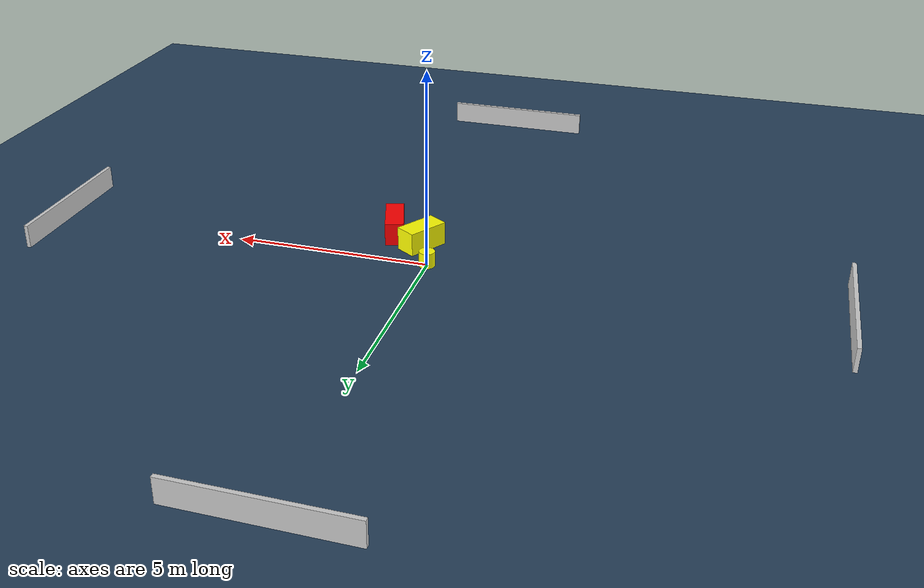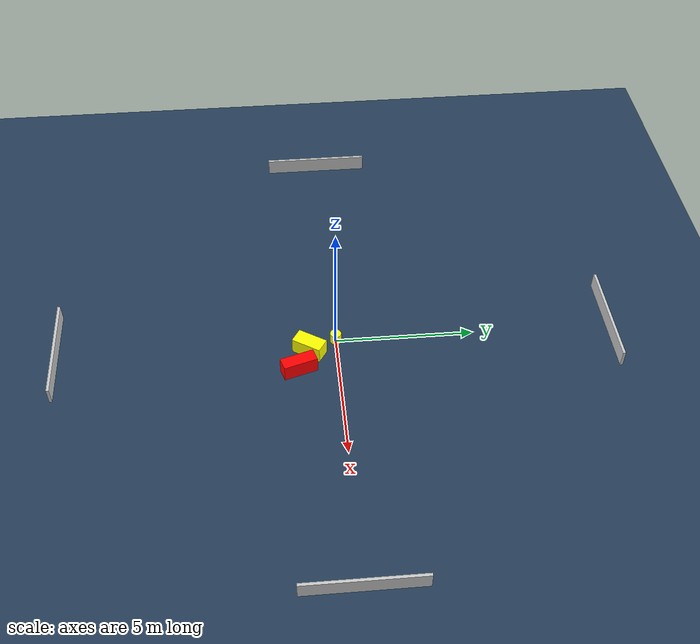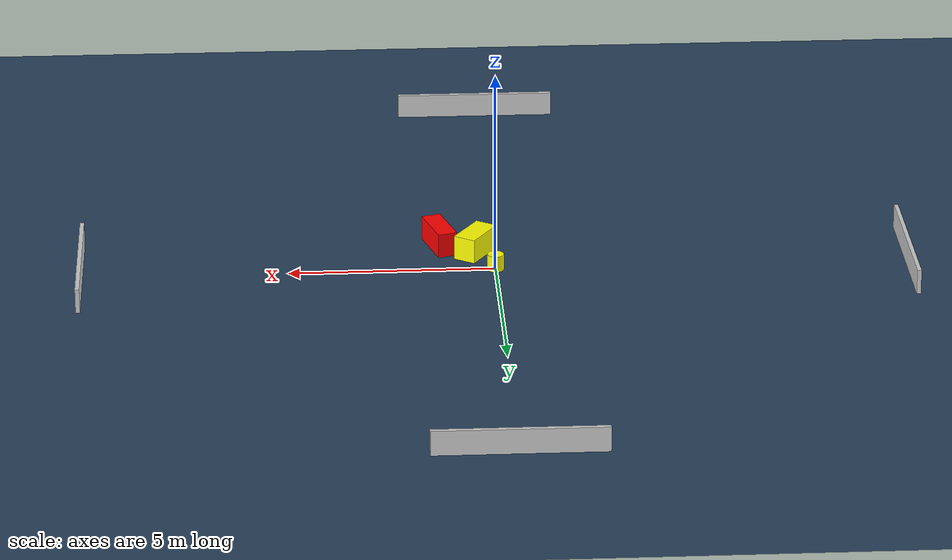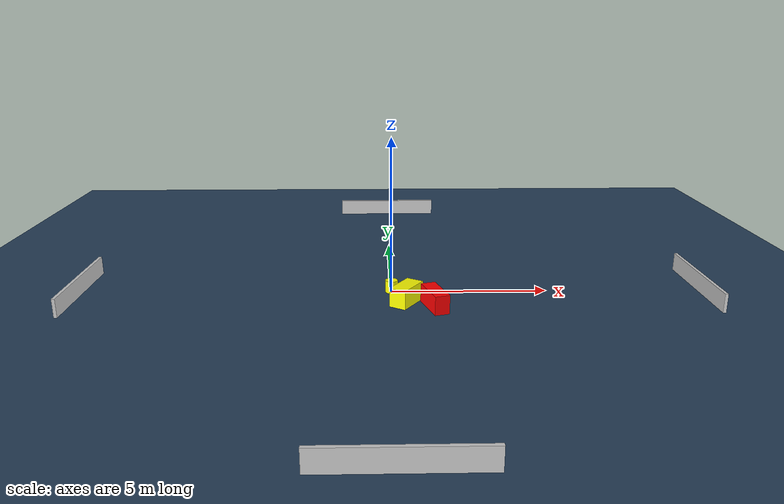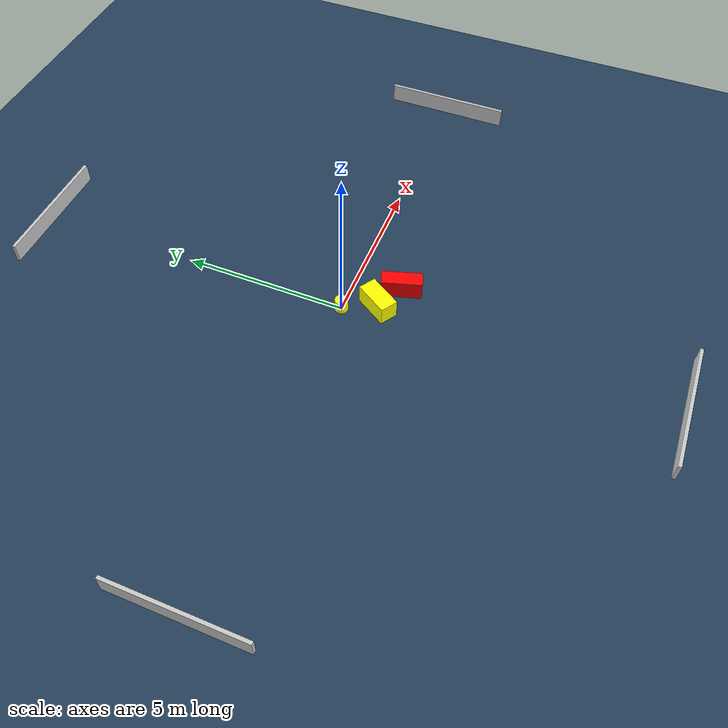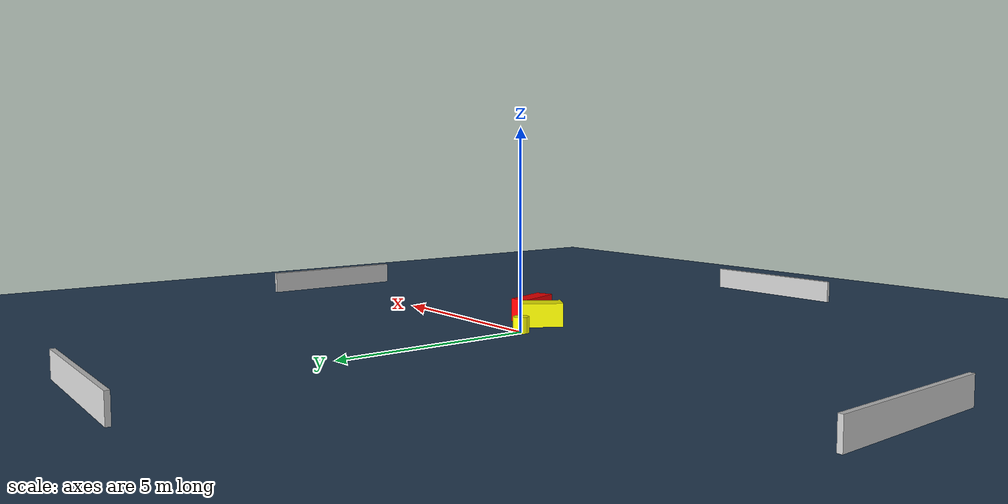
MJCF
<?xml version="1.0" ?>
<mujoco model="generated_environment">
  <option timestep="0.01" integrator="RK4" cone="elliptic"/>
  <default>
    <geom density="1"/>
  </default>
  <asset>
    <texture builtin="gradient" height="3072" name="skybox" rgb1="0.3 0.5 0.7" rgb2="0 0 0" type="skybox" width="512"/>
    <texture builtin="checker" height="300" name="groundplane" rgb1="0.2 0.3 0.4" rgb2="0.1 0.2 0.3" type="2d" width="300"/>
    <material name="groundplane" reflectance="0.2" texrepeat="5 5" texture="groundplane"/>
  </asset>
  <worldbody>
    <light dir="0 0 -1" directional="true" pos="0 0 1.5"/>
    <geom condim="3" friction="0.5 0.005 0.001" material="groundplane" name="floor" pos="0 0 0" size="0 0 0.05" type="plane"/>
    <body name="walls">
      <geom name="wall_1" condim="4" pos="-10.0 0.0 0.3" rgba="0.800000011920929 0.800000011920929 0.800000011920929 1.0" size="0.05 2.0 0.3" type="box"/>
      <geom name="wall_2" condim="4" pos="10.0 0.0 0.3" rgba="0.800000011920929 0.800000011920929 0.800000011920929 1.0" size="0.05 2.0 0.3" type="box"/>
      <geom name="wall_3" condim="4" pos="0.0 -10.0 0.3" rgba="0.800000011920929 0.800000011920929 0.800000011920929 1.0" size="2.0 0.05 0.3" type="box"/>
      <geom name="wall_4" condim="4" pos="0.0 10.0 0.3" rgba="0.800000011920929 0.800000011920929 0.800000011920929 1.0" size="2.0 0.05 0.3" type="box"/>
    </body>
    <body name="robot">
      <joint name="joint_x" type="slide" pos="0 0 0" axis="1 0 0"/>
      <joint name="joint_y" type="slide" pos="0 0 0" axis="0 1 0"/>
      <geom name="robot" type="cylinder" pos="0.0 0.0 0.2" size="0.2 0.2 0.0" mass="5.0" friction="1.0 0.005 0.0001" condim="4" rgba="1.0 1.0 0.0 1.0"/>
    </body>
    <body name="obstacle_1_movable">
      <geom name="obstacle_1_movable" condim="4" pos="0.4364199117146616 -0.9764228319481512 0.3" euler="0 0 327.38216040982854" friction="0.0 0.005 0.001" rgba="1.0 1.0 0.0 1.0" size="0.2787340823113555 0.5498721893588752 0.3" type="box" mass="0.1"/>
      <joint type="free"/>
    </body>
    <body name="obstacle_2_static">
      <geom name="obstacle_2_static" condim="4" pos="1.2993534399789364 -1.4069052436135867 0.3" euler="0 0 287.1438249480068" friction="0.0 0.005 0.001" rgba="1.0 0.0 0.0 1.0" size="0.6162767976530592 0.23659203117223732 0.3" type="box"/>
    </body>
  </worldbody>
  <actuator>
    <motor name="actuator_x" joint="joint_x" gear="1" ctrlrange="-1 1"/>
    <motor name="actuator_y" joint="joint_y" gear="1" ctrlrange="-1 1"/>
  </actuator>
</mujoco>
